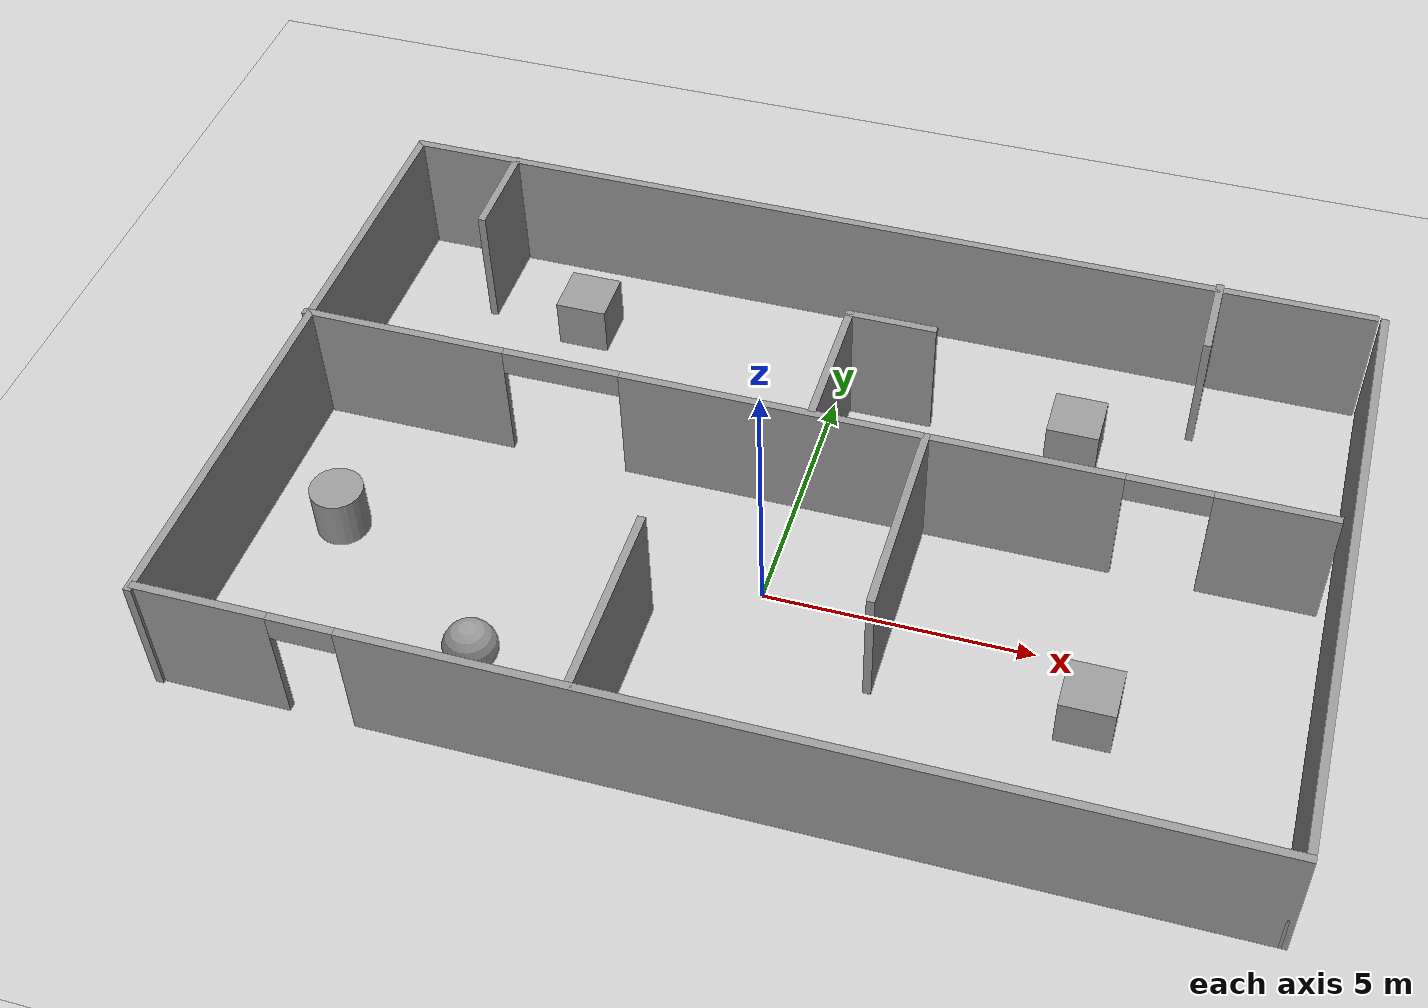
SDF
<sdf version="1.7">
 <world name="default">
  <light name="sun" type="directional">
   <pose>0 0 10 0 -0 0</pose>
   <diffuse>0.8 0.8 0.8 1</diffuse>
   <specular>0.2 0.2 0.2 1</specular>
   <attenuation>
    <range>1000</range>
    <constant>0.9</constant>
    <linear>0.01</linear>
    <quadratic>0.001</quadratic>
   </attenuation>
   <direction>-0.5 0.1 -0.9</direction>
   <spot><inner_angle>0</inner_angle><outer_angle>0</outer_angle><falloff>0</falloff></spot>
  </light>
  <model name="ground_plane">
   <static>1</static>
   <link name="link">
    <collision name="collision">
     <geometry><plane><normal>0 0 1</normal><size>100 100</size></plane></geometry>
     <surface><friction><ode><mu>100</mu><mu2>50</mu2></ode></friction></surface>
    </collision>
    <visual name="visual">
     <cast_shadows>0</cast_shadows>
     <geometry><plane><normal>0 0 1</normal><size>100 100</size></plane></geometry>
     <material>
      <script><uri>file://media/materials/scripts/gazebo.material</uri><name>Gazebo/Grey</name></script>
     </material>
    </visual>
   </link>
  </model>
  <gravity>0 0 -9.8</gravity>
  <magnetic_field>6e-06 2.3e-05 -4.2e-05</magnetic_field>
  <atmosphere type="adiabatic"/>
  <physics type="ode">
   <max_step_size>0.001</max_step_size>
   <real_time_factor>1</real_time_factor>
   <real_time_update_rate>1000</real_time_update_rate>
  </physics>
  <scene><ambient>0.4 0.4 0.4 1</ambient><background>0.7 0.7 0.7 1</background><shadows>1</shadows></scene>
  <spherical_coordinates>
   <surface_model>EARTH_WGS84</surface_model>
   <latitude_deg>0</latitude_deg>
   <longitude_deg>0</longitude_deg>
   <elevation>0</elevation>
   <heading_deg>0</heading_deg>
  </spherical_coordinates>
  <model name="room">
   <pose>0.168021 1.48442 0 0 -0 0</pose>
   <link name="Door_0">
    <collision name="Door_0_Collision">
     <geometry><box><size>1.07553 0.2 2</size></box></geometry>
     <pose>0 0 1 0 -0 0</pose>
    </collision>
    <visual name="Door_0_Visual">
     <pose>0 0 1 0 -0 0</pose>
     <geometry><box><size>1.07553 0.2 2</size></box></geometry>
     <material>
      <script><uri>file://media/materials/scripts/gazebo.material</uri><name>Gazebo/Grey</name></script>
     </material>
    </visual>
    <pose>6.97147 -6.02618 0 0 -0 0</pose>
   </link>
   <link name="Wall_0">
    <pose>0.029612 -6.08469 0 0 -0 0</pose>
    <visual name="Wall_0_Visual_0">
     <pose>-8.51863 0 1.25 0 -0 0</pose>
     <geometry><box><size>2.46274 0.15 2.5</size></box></geometry>
     <material>
      <script><uri>file://media/materials/scripts/gazebo.material</uri><name>Gazebo/Grey</name></script>
      <ambient>1 1 1 1</ambient>
     </material>
     <meta><layer>0</layer></meta>
    </visual>
    <collision name="Wall_0_Collision_0">
     <geometry><box><size>2.46274 0.15 2.5</size></box></geometry>
     <pose>-8.51863 0 1.25 0 -0 0</pose>
    </collision>
    <visual name="Wall_0_Visual_1">
     <pose>1.82764 0 1.25 0 -0 0</pose>
     <geometry><box><size>15.8447 0.15 2.5</size></box></geometry>
     <material>
      <script><uri>file://media/materials/scripts/gazebo.material</uri><name>Gazebo/Grey</name></script>
      <ambient>1 1 1 1</ambient>
     </material>
     <meta><layer>0</layer></meta>
    </visual>
    <collision name="Wall_0_Collision_1">
     <geometry><box><size>15.8447 0.15 2.5</size></box></geometry>
     <pose>1.82764 0 1.25 0 -0 0</pose>
    </collision>
    <visual name="Wall_0_Visual_2">
     <pose>-6.69099 0 2.25 0 -0 0</pose>
     <geometry><box><size>1.19255 0.15 0.5</size></box></geometry>
     <material>
      <script><uri>file://media/materials/scripts/gazebo.material</uri><name>Gazebo/Grey</name></script>
      <ambient>1 1 1 1</ambient>
     </material>
     <meta><layer>0</layer></meta>
    </visual>
    <collision name="Wall_0_Collision_2">
     <geometry><box><size>1.19255 0.15 0.5</size></box></geometry>
     <pose>-6.69099 0 2.25 0 -0 0</pose>
    </collision>
   </link>
   <link name="Wall_11">
    <collision name="Wall_11_Collision">
     <geometry><box><size>3.75 0.15 2.5</size></box></geometry>
     <pose>0 0 1.25 0 -0 0</pose>
    </collision>
    <visual name="Wall_11_Visual">
     <pose>0 0 1.25 0 -0 0</pose>
     <geometry><box><size>3.75 0.15 2.5</size></box></geometry>
     <material>
      <script><uri>file://media/materials/scripts/gazebo.material</uri><name>Gazebo/Grey</name></script>
      <ambient>1 1 1 1</ambient>
     </material>
     <meta><layer>0</layer></meta>
    </visual>
    <pose>-2.03908 -4.22618 0 0 -0 1.5708</pose>
   </link>
   <link name="Wall_13">
    <collision name="Wall_13_Collision">
     <geometry><box><size>1.75 0.15 2.5</size></box></geometry>
     <pose>0 0 1.25 0 -0 0</pose>
    </collision>
    <visual name="Wall_13_Visual">
     <pose>0 0 1.25 0 -0 0</pose>
     <geometry><box><size>1.75 0.15 2.5</size></box></geometry>
     <material>
      <script><uri>file://media/materials/scripts/gazebo.material</uri><name>Gazebo/Grey</name></script>
      <ambient>1 1 1 1</ambient>
     </material>
     <meta><layer>0</layer></meta>
    </visual>
    <pose>6.62041 5.34391 0 0 -0 -1.5708</pose>
   </link>
   <link name="Wall_15">
    <collision name="Wall_15_Collision">
     <geometry><box><size>2 0.15 2.5</size></box></geometry>
     <pose>0 0 1.25 0 -0 0</pose>
    </collision>
    <visual name="Wall_15_Visual">
     <pose>0 0 1.25 0 -0 0</pose>
     <geometry><box><size>2 0.15 2.5</size></box></geometry>
     <material>
      <script><uri>file://media/materials/scripts/gazebo.material</uri><name>Gazebo/Grey</name></script>
      <ambient>1 1 1 1</ambient>
     </material>
     <meta><layer>0</layer></meta>
    </visual>
    <pose>-7.53902 5.1604 0 0 -0 -1.5708</pose>
   </link>
   <link name="Wall_17">
    <collision name="Wall_17_Collision">
     <geometry><box><size>4 0.15 2.5</size></box></geometry>
     <pose>0 0 1.25 0 -0 0</pose>
    </collision>
    <visual name="Wall_17_Visual">
     <pose>0 0 1.25 0 -0 0</pose>
     <geometry><box><size>4 0.15 2.5</size></box></geometry>
     <material>
      <script><uri>file://media/materials/scripts/gazebo.material</uri><name>Gazebo/Grey</name></script>
      <ambient>1 1 1 1</ambient>
     </material>
     <meta><layer>0</layer></meta>
    </visual>
    <pose>2.17365 -1.1055 0 0 -0 -1.5708</pose>
   </link>
   <link name="Wall_2">
    <collision name="Wall_2_Collision">
     <geometry><box><size>12.3676 0.15 2.5</size></box></geometry>
     <pose>0 0 1.25 0 -0 0</pose>
    </collision>
    <visual name="Wall_2_Visual">
     <pose>0 0 1.25 0 -0 0</pose>
     <geometry><box><size>12.3676 0.15 2.5</size></box></geometry>
     <material>
      <script><uri>file://media/materials/scripts/gazebo.material</uri><name>Gazebo/Grey</name></script>
      <ambient>1 1 1 1</ambient>
     </material>
     <meta><layer>0</layer></meta>
    </visual>
    <pose>-9.64539 -0.03469 0 0 -0 1.56122</pose>
   </link>
   <link name="Wall_20">
    <collision name="Wall_20_Collision">
     <geometry><box><size>2.75 0.15 2.5</size></box></geometry>
     <pose>0 0 1.25 0 -0 0</pose>
    </collision>
    <visual name="Wall_20_Visual">
     <pose>0 0 1.25 0 -0 0</pose>
     <geometry><box><size>2.75 0.15 2.5</size></box></geometry>
     <material>
      <script><uri>file://media/materials/scripts/gazebo.material</uri><name>Gazebo/Grey</name></script>
      <ambient>1 1 1 1</ambient>
     </material>
     <meta><layer>0</layer></meta>
    </visual>
    <pose>0.067283 2.23652 0 0 -0 1.5708</pose>
   </link>
   <link name="Wall_21">
    <collision name="Wall_21_Collision">
     <geometry><box><size>1.75 0.15 2.5</size></box></geometry>
     <pose>0 0 1.25 0 -0 0</pose>
    </collision>
    <visual name="Wall_21_Visual">
     <pose>0 0 1.25 0 -0 0</pose>
     <geometry><box><size>1.75 0.15 2.5</size></box></geometry>
     <material>
      <script><uri>file://media/materials/scripts/gazebo.material</uri><name>Gazebo/Grey</name></script>
      <ambient>1 1 1 1</ambient>
     </material>
     <meta><layer>0</layer></meta>
    </visual>
    <pose>0.867283 3.53652 0 0 -0 0</pose>
   </link>
   <link name="Wall_3">
    <collision name="Wall_3_Collision">
     <geometry><box><size>19.25 0.15 2.5</size></box></geometry>
     <pose>0 0 1.25 0 -0 0</pose>
    </collision>
    <visual name="Wall_3_Visual">
     <pose>0 0 1.25 0 -0 0</pose>
     <geometry><box><size>19.25 0.15 2.5</size></box></geometry>
     <material>
      <script><uri>file://media/materials/scripts/gazebo.material</uri><name>Gazebo/Grey</name></script>
      <ambient>1 1 1 1</ambient>
     </material>
     <meta><layer>0</layer></meta>
    </visual>
    <pose>-0.036878 6.07382 0 0 -0 0</pose>
   </link>
   <link name="Wall_7">
    <collision name="Wall_7_Collision">
     <geometry><box><size>12.25 0.15 2.5</size></box></geometry>
     <pose>0 0 1.25 0 -0 0</pose>
    </collision>
    <visual name="Wall_7_Visual">
     <pose>0 0 1.25 0 -0 0</pose>
     <geometry><box><size>12.25 0.15 2.5</size></box></geometry>
     <material>
      <script><uri>file://media/materials/scripts/gazebo.material</uri><name>Gazebo/Grey</name></script>
      <ambient>1 1 1 1</ambient>
     </material>
     <meta><layer>0</layer></meta>
    </visual>
    <pose>9.70461 -0.03469 0 0 -0 1.5708</pose>
   </link>
   <link name="Wall_9">
    <pose>-0.153898 0.819498 0 0 -0 0</pose>
    <visual name="Wall_9_Visual_0">
     <pose>-7.633 0 1.25 0 -0 0</pose>
     <geometry><box><size>3.984 0.15 2.5</size></box></geometry>
     <material>
      <script><uri>file://media/materials/scripts/gazebo.material</uri><name>Gazebo/Grey</name></script>
      <ambient>1 1 1 1</ambient>
     </material>
     <meta><layer>0</layer></meta>
    </visual>
    <collision name="Wall_9_Collision_0">
     <geometry><box><size>3.984 0.15 2.5</size></box></geometry>
     <pose>-7.633 0 1.25 0 -0 0</pose>
    </collision>
    <visual name="Wall_9_Visual_1">
     <pose>1.24511 0 1.25 0 -0 0</pose>
     <geometry><box><size>9.28075 0.15 2.5</size></box></geometry>
     <material>
      <script><uri>file://media/materials/scripts/gazebo.material</uri><name>Gazebo/Grey</name></script>
      <ambient>1 1 1 1</ambient>
     </material>
     <meta><layer>0</layer></meta>
    </visual>
    <collision name="Wall_9_Collision_1">
     <geometry><box><size>9.28075 0.15 2.5</size></box></geometry>
     <pose>1.24511 0 1.25 0 -0 0</pose>
    </collision>
    <visual name="Wall_9_Visual_2">
     <pose>8.52705 0 1.25 0 -0 0</pose>
     <geometry><box><size>2.19591 0.15 2.5</size></box></geometry>
     <material>
      <script><uri>file://media/materials/scripts/gazebo.material</uri><name>Gazebo/Grey</name></script>
      <ambient>1 1 1 1</ambient>
     </material>
     <meta><layer>0</layer></meta>
    </visual>
    <collision name="Wall_9_Collision_2">
     <geometry><box><size>2.19591 0.15 2.5</size></box></geometry>
     <pose>8.52705 0 1.25 0 -0 0</pose>
    </collision>
    <visual name="Wall_9_Visual_3">
     <pose>-4.51813 0 2.25 0 -0 0</pose>
     <geometry><box><size>2.24573 0.15 0.5</size></box></geometry>
     <material>
      <script><uri>file://media/materials/scripts/gazebo.material</uri><name>Gazebo/Grey</name></script>
      <ambient>1 1 1 1</ambient>
     </material>
     <meta><layer>0</layer></meta>
    </visual>
    <collision name="Wall_9_Collision_3">
     <geometry><box><size>2.24573 0.15 0.5</size></box></geometry>
     <pose>-4.51813 0 2.25 0 -0 0</pose>
    </collision>
    <visual name="Wall_9_Visual_4">
     <pose>6.65729 0 2.25 0 -0 0</pose>
     <geometry><box><size>1.54361 0.15 0.5</size></box></geometry>
     <material>
      <script><uri>file://media/materials/scripts/gazebo.material</uri><name>Gazebo/Grey</name></script>
      <ambient>1 1 1 1</ambient>
     </material>
     <meta><layer>0</layer></meta>
    </visual>
    <collision name="Wall_9_Collision_4">
     <geometry><box><size>1.54361 0.15 0.5</size></box></geometry>
     <pose>6.65729 0 2.25 0 -0 0</pose>
    </collision>
   </link>
   <static>1</static>
  </model>
  <model name="room_0">
   <link name="link_0">
    <inertial>
     <mass>1</mass>
     <inertia><ixx>0.145833</ixx><ixy>0</ixy><ixz>0</ixz><iyy>0.145833</iyy><iyz>0</iyz><izz>0.125</izz></inertia>
    </inertial>
    <pose>-6.58093 -1.72171 0 0 -0 0</pose>
    <visual name="visual">
     <geometry><cylinder><radius>0.5</radius><length>1</length></cylinder></geometry>
     <material>
      <lighting>1</lighting>
      <script><uri>file://media/materials/scripts/gazebo.material</uri><name>Gazebo/Grey</name></script>
      <shader type="pixel"/>
     </material>
    </visual>
    <collision name="collision">
     <geometry><cylinder><radius>0.5</radius><length>1</length></cylinder></geometry>
     <surface>
      <friction>
       <ode><mu>1</mu><mu2>1</mu2><fdir1>0 0 0</fdir1><slip1>0</slip1><slip2>0</slip2></ode>
       <torsional>
        <coefficient>1</coefficient>
        <patch_radius>0</patch_radius>
        <surface_radius>0</surface_radius>
        <use_patch_radius>1</use_patch_radius>
        <ode><slip>0</slip></ode>
       </torsional>
      </friction>
      <bounce><restitution_coefficient>0</restitution_coefficient><threshold>1e+06</threshold></bounce>
      <contact>
       <collide_without_contact>0</collide_without_contact>
       <collide_without_contact_bitmask>1</collide_without_contact_bitmask>
       <collide_bitmask>1</collide_bitmask>
       <ode>
        <soft_cfm>0</soft_cfm>
        <soft_erp>0.2</soft_erp>
        <kp>1e+13</kp>
        <kd>1</kd>
        <max_vel>0.01</max_vel>
        <min_depth>0</min_depth>
       </ode>
       <bullet>
        <split_impulse>1</split_impulse>
        <split_impulse_penetration_threshold>-0.01</split_impulse_penetration_threshold>
        <soft_cfm>0</soft_cfm>
        <soft_erp>0.2</soft_erp>
        <kp>1e+13</kp>
        <kd>1</kd>
       </bullet>
      </contact>
     </surface>
    </collision>
   </link>
   <link name="link_1">
    <inertial>
     <mass>1</mass>
     <inertia>
      <ixx>0.166667</ixx>
      <ixy>0</ixy>
      <ixz>0</ixz>
      <iyy>0.166667</iyy>
      <iyz>0</iyz>
      <izz>0.166667</izz>
     </inertia>
    </inertial>
    <pose>7.49579 -2.45154 0 0 -0 0</pose>
    <visual name="visual">
     <geometry><box><size>1 1 1</size></box></geometry>
     <material>
      <lighting>1</lighting>
      <script><uri>file://media/materials/scripts/gazebo.material</uri><name>Gazebo/Grey</name></script>
      <shader type="pixel"/>
     </material>
    </visual>
    <collision name="collision">
     <geometry><box><size>1 1 1</size></box></geometry>
     <surface>
      <friction>
       <ode><mu>1</mu><mu2>1</mu2><fdir1>0 0 0</fdir1><slip1>0</slip1><slip2>0</slip2></ode>
       <torsional>
        <coefficient>1</coefficient>
        <patch_radius>0</patch_radius>
        <surface_radius>0</surface_radius>
        <use_patch_radius>1</use_patch_radius>
        <ode><slip>0</slip></ode>
       </torsional>
      </friction>
      <bounce><restitution_coefficient>0</restitution_coefficient><threshold>1e+06</threshold></bounce>
      <contact>
       <collide_without_contact>0</collide_without_contact>
       <collide_without_contact_bitmask>1</collide_without_contact_bitmask>
       <collide_bitmask>1</collide_bitmask>
       <ode>
        <soft_cfm>0</soft_cfm>
        <soft_erp>0.2</soft_erp>
        <kp>1e+13</kp>
        <kd>1</kd>
        <max_vel>0.01</max_vel>
        <min_depth>0</min_depth>
       </ode>
       <bullet>
        <split_impulse>1</split_impulse>
        <split_impulse_penetration_threshold>-0.01</split_impulse_penetration_threshold>
        <soft_cfm>0</soft_cfm>
        <soft_erp>0.2</soft_erp>
        <kp>1e+13</kp>
        <kd>1</kd>
       </bullet>
      </contact>
     </surface>
    </collision>
   </link>
   <link name="link_2">
    <inertial>
     <mass>1</mass>
     <inertia>
      <ixx>0.166667</ixx>
      <ixy>0</ixy>
      <ixz>0</ixz>
      <iyy>0.166667</iyy>
      <iyz>0</iyz>
      <izz>0.166667</izz>
     </inertia>
    </inertial>
    <pose>-3.92481 4.50979 0 0 -0 0</pose>
    <visual name="visual">
     <geometry><box><size>1 1 1</size></box></geometry>
     <material>
      <lighting>1</lighting>
      <script><uri>file://media/materials/scripts/gazebo.material</uri><name>Gazebo/Grey</name></script>
      <shader type="pixel"/>
     </material>
    </visual>
    <collision name="collision">
     <geometry><box><size>1 1 1</size></box></geometry>
     <surface>
      <friction>
       <ode><mu>1</mu><mu2>1</mu2><fdir1>0 0 0</fdir1><slip1>0</slip1><slip2>0</slip2></ode>
       <torsional>
        <coefficient>1</coefficient>
        <patch_radius>0</patch_radius>
        <surface_radius>0</surface_radius>
        <use_patch_radius>1</use_patch_radius>
        <ode><slip>0</slip></ode>
       </torsional>
      </friction>
      <bounce><restitution_coefficient>0</restitution_coefficient><threshold>1e+06</threshold></bounce>
      <contact>
       <collide_without_contact>0</collide_without_contact>
       <collide_without_contact_bitmask>1</collide_without_contact_bitmask>
       <collide_bitmask>1</collide_bitmask>
       <ode>
        <soft_cfm>0</soft_cfm>
        <soft_erp>0.2</soft_erp>
        <kp>1e+13</kp>
        <kd>1</kd>
        <max_vel>0.01</max_vel>
        <min_depth>0</min_depth>
       </ode>
       <bullet>
        <split_impulse>1</split_impulse>
        <split_impulse_penetration_threshold>-0.01</split_impulse_penetration_threshold>
        <soft_cfm>0</soft_cfm>
        <soft_erp>0.2</soft_erp>
        <kp>1e+13</kp>
        <kd>1</kd>
       </bullet>
      </contact>
     </surface>
    </collision>
   </link>
   <link name="link_3">
    <inertial>
     <mass>1</mass>
     <inertia>
      <ixx>0.166667</ixx>
      <ixy>0</ixy>
      <ixz>0</ixz>
      <iyy>0.166667</iyy>
      <iyz>0</iyz>
      <izz>0.166667</izz>
     </inertia>
    </inertial>
    <pose>6.07625 3.77283 0 0 -0 0</pose>
    <visual name="visual">
     <geometry><box><size>1 1 1</size></box></geometry>
     <material>
      <lighting>1</lighting>
      <script><uri>file://media/materials/scripts/gazebo.material</uri><name>Gazebo/Grey</name></script>
      <shader type="pixel"/>
     </material>
    </visual>
    <collision name="collision">
     <geometry><box><size>1 1 1</size></box></geometry>
     <surface>
      <friction>
       <ode><mu>1</mu><mu2>1</mu2><fdir1>0 0 0</fdir1><slip1>0</slip1><slip2>0</slip2></ode>
       <torsional>
        <coefficient>1</coefficient>
        <patch_radius>0</patch_radius>
        <surface_radius>0</surface_radius>
        <use_patch_radius>1</use_patch_radius>
        <ode><slip>0</slip></ode>
       </torsional>
      </friction>
      <bounce><restitution_coefficient>0</restitution_coefficient><threshold>1e+06</threshold></bounce>
      <contact>
       <collide_without_contact>0</collide_without_contact>
       <collide_without_contact_bitmask>1</collide_without_contact_bitmask>
       <collide_bitmask>1</collide_bitmask>
       <ode>
        <soft_cfm>0</soft_cfm>
        <soft_erp>0.2</soft_erp>
        <kp>1e+13</kp>
        <kd>1</kd>
        <max_vel>0.01</max_vel>
        <min_depth>0</min_depth>
       </ode>
       <bullet>
        <split_impulse>1</split_impulse>
        <split_impulse_penetration_threshold>-0.01</split_impulse_penetration_threshold>
        <soft_cfm>0</soft_cfm>
        <soft_erp>0.2</soft_erp>
        <kp>1e+13</kp>
        <kd>1</kd>
       </bullet>
      </contact>
     </surface>
    </collision>
   </link>
   <link name="link_4">
    <inertial>
     <mass>1</mass>
     <inertia><ixx>0.1</ixx><ixy>0</ixy><ixz>0</ixz><iyy>0.1</iyy><iyz>0</iyz><izz>0.1</izz></inertia>
    </inertial>
    <pose>-3.0663 -4.10938 0 0 -0 0</pose>
    <visual name="visual">
     <geometry><sphere><radius>0.5</radius></sphere></geometry>
     <material>
      <lighting>1</lighting>
      <script><uri>file://media/materials/scripts/gazebo.material</uri><name>Gazebo/Grey</name></script>
      <shader type="pixel"/>
     </material>
    </visual>
    <collision name="collision">
     <geometry><sphere><radius>0.5</radius></sphere></geometry>
     <surface>
      <friction>
       <ode><mu>1</mu><mu2>1</mu2><fdir1>0 0 0</fdir1><slip1>0</slip1><slip2>0</slip2></ode>
       <torsional>
        <coefficient>1</coefficient>
        <patch_radius>0</patch_radius>
        <surface_radius>0</surface_radius>
        <use_patch_radius>1</use_patch_radius>
        <ode><slip>0</slip></ode>
       </torsional>
      </friction>
      <bounce><restitution_coefficient>0</restitution_coefficient><threshold>1e+06</threshold></bounce>
      <contact>
       <collide_without_contact>0</collide_without_contact>
       <collide_without_contact_bitmask>1</collide_without_contact_bitmask>
       <collide_bitmask>1</collide_bitmask>
       <ode>
        <soft_cfm>0</soft_cfm>
        <soft_erp>0.2</soft_erp>
        <kp>1e+13</kp>
        <kd>1</kd>
        <max_vel>0.01</max_vel>
        <min_depth>0</min_depth>
       </ode>
       <bullet>
        <split_impulse>1</split_impulse>
        <split_impulse_penetration_threshold>-0.01</split_impulse_penetration_threshold>
        <soft_cfm>0</soft_cfm>
        <soft_erp>0.2</soft_erp>
        <kp>1e+13</kp>
        <kd>1</kd>
       </bullet>
      </contact>
     </surface>
    </collision>
   </link>
   <static>0</static>
   <pose>-1.3761 1.24137 0.499981 -2e-06 2e-06 -0</pose>
  </model>
 </world>
</sdf>
